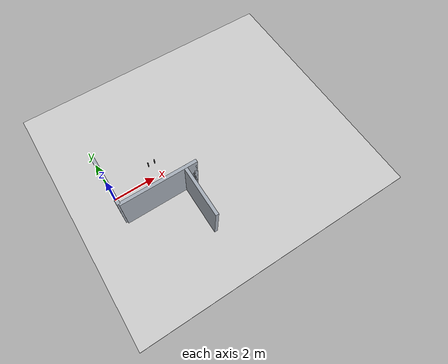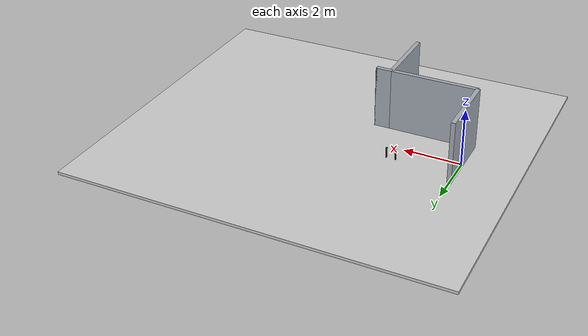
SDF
<sdf version="1.9">
 <world name="default">
  <model name="ground_plane">
   <static>true</static>
   <pose>4.75 0 -0.05 0 0 0</pose>
   <link name="body">
    <collision name="collision"><geometry><box><size>13.5 12 0.1</size></box></geometry></collision>
    <visual name="visual">
     <geometry><box><size>13.5 12 0.1</size></box></geometry>
     <material><ambient>0.8 0.8 0.8 1</ambient><diffuse>0.8 0.8 0.8 1</diffuse></material>
    </visual>
   </link>
  </model>
  <model name="start_wall">
   <static>true</static>
   <pose>0 0 1.1 0 0 0</pose>
   <link name="body">
    <collision name="collision"><geometry><box><size>0.15 2.4 2.2</size></box></geometry></collision>
    <visual name="visual">
     <geometry><box><size>0.15 2.4 2.2</size></box></geometry>
     <material><ambient>0.65 0.68 0.72 1</ambient><diffuse>0.65 0.68 0.72 1</diffuse></material>
    </visual>
   </link>
  </model>
  <model name="hall_-1_1">
   <static>true</static>
   <pose>1.775 -1.2 1.1 0 0 0</pose>
   <link name="body">
    <collision name="collision"><geometry><box><size>3.55 0.15 2.2</size></box></geometry></collision>
    <visual name="visual">
     <geometry><box><size>3.55 0.15 2.2</size></box></geometry>
     <material><ambient>0.65 0.68 0.72 1</ambient><diffuse>0.65 0.68 0.72 1</diffuse></material>
    </visual>
   </link>
  </model>
  <model name="room_-1_1_-1">
   <static>true</static>
   <pose>3.0 -2.4 1.1 0 0 0</pose>
   <link name="body">
    <collision name="collision"><geometry><box><size>0.15 2.4 2.2</size></box></geometry></collision>
    <visual name="visual">
     <geometry><box><size>0.15 2.4 2.2</size></box></geometry>
     <material><ambient>0.65 0.68 0.72 1</ambient><diffuse>0.65 0.68 0.72 1</diffuse></material>
    </visual>
   </link>
  </model>
  <model name="jamb_-1_1_-1">
   <static>true</static>
   <pose>3.275 -1.2 1.1 0 0 0</pose>
   <link name="body">
    <collision name="collision"><geometry><box><size>0.55 0.15 2.2</size></box></geometry></collision>
    <visual name="visual">
     <geometry><box><size>0.55 0.15 2.2</size></box></geometry>
     <material><ambient>0.65 0.68 0.72 1</ambient><diffuse>0.65 0.68 0.72 1</diffuse></material>
    </visual>
   </link>
  </model>
  <model name="chair_leg_-0.16_-0.16">
   <static>true</static>
   <pose>2.04 0.6399999999999999 0.19 0 0 0</pose>
   <link name="body">
    <collision name="collision"><geometry><box><size>0.04 0.04 0.38</size></box></geometry></collision>
    <visual name="visual">
     <geometry><box><size>0.04 0.04 0.38</size></box></geometry>
     <material><ambient>0.2 0.2 0.2 1</ambient><diffuse>0.2 0.2 0.2 1</diffuse></material>
    </visual>
   </link>
  </model>
  <model name="chair_leg_0.16_-0.16">
   <static>true</static>
   <pose>2.3600000000000003 0.6399999999999999 0.19 0 0 0</pose>
   <link name="body">
    <collision name="collision"><geometry><box><size>0.04 0.04 0.38</size></box></geometry></collision>
    <visual name="visual">
     <geometry><box><size>0.04 0.04 0.38</size></box></geometry>
     <material><ambient>0.2 0.2 0.2 1</ambient><diffuse>0.2 0.2 0.2 1</diffuse></material>
    </visual>
   </link>
  </model>
 </world>
</sdf>
